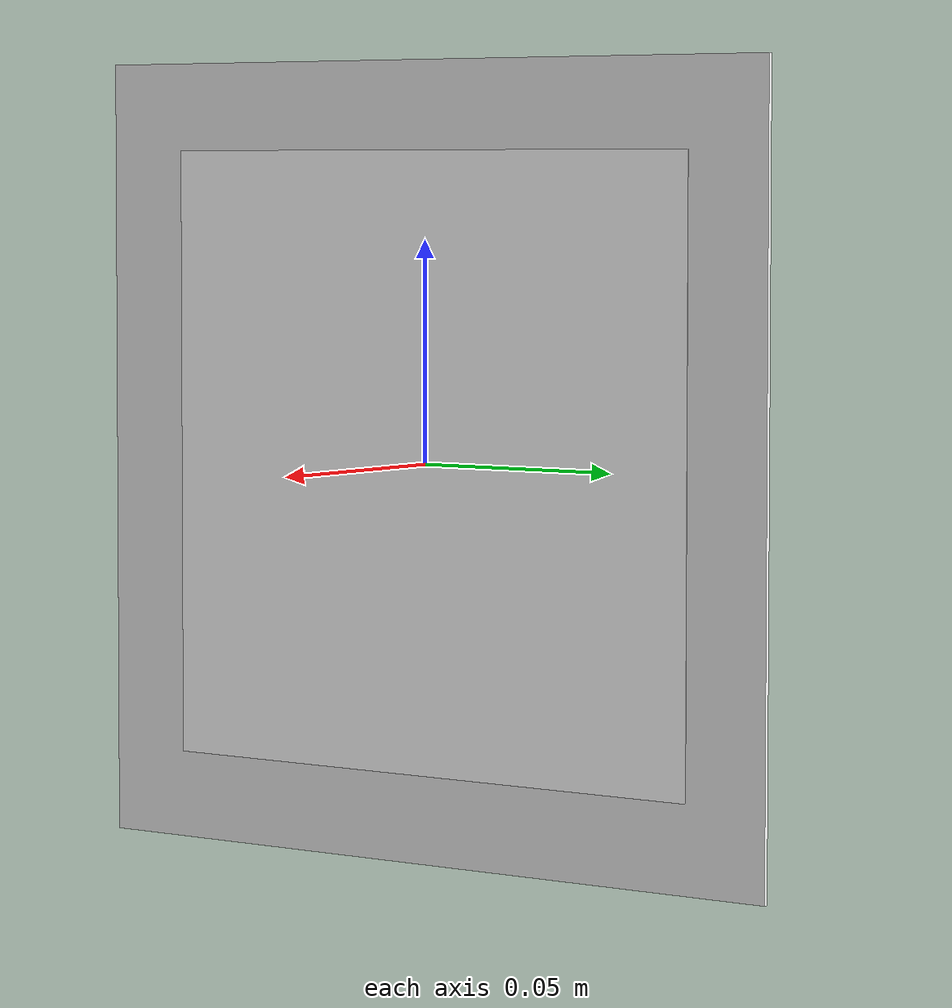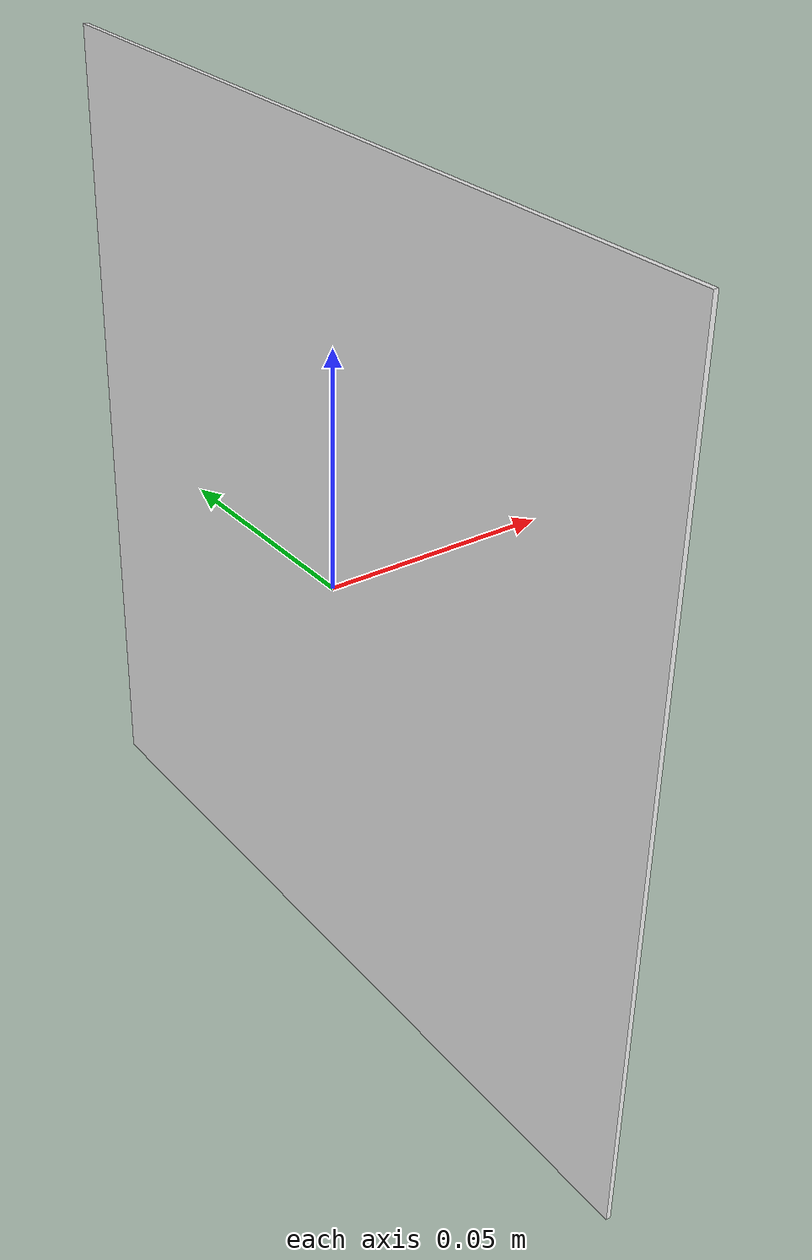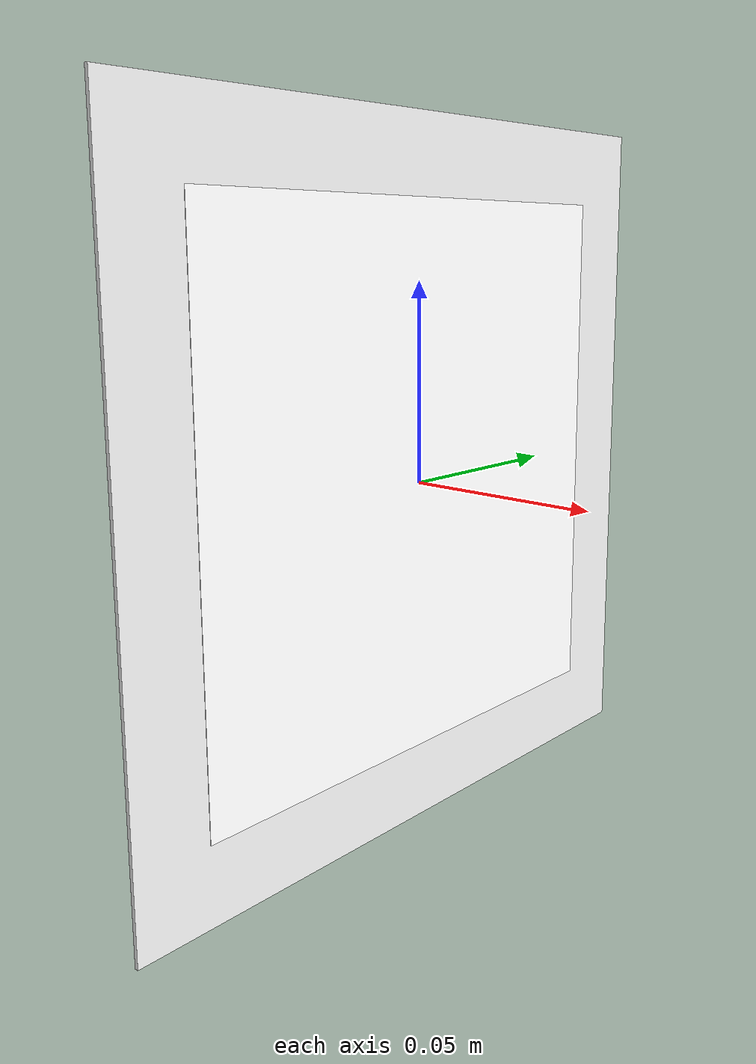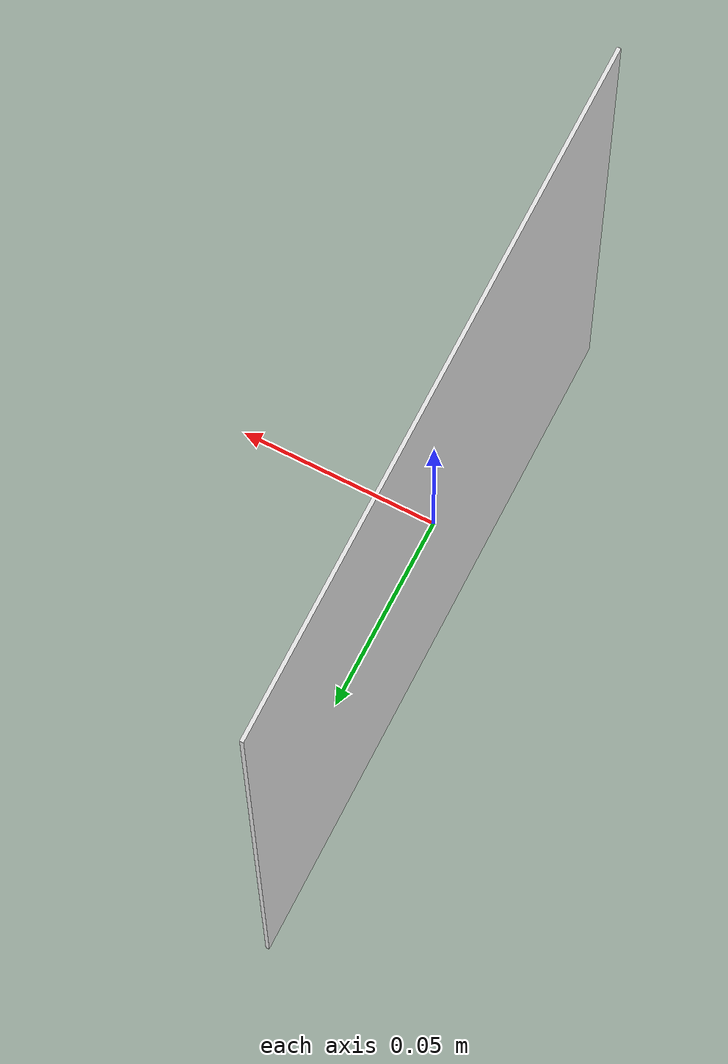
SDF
<?xml  version="1.0" ?>
<sdf version="1.5">

    <model name='aruco_marker_3'>
        <pose>0 0 0 0 0 0</pose>
        <static>true</static>
        <link name='link'>
            <inertial>
                <pose>0 0 0 0 -0 0</pose>
                <mass>0.281</mass>
                <inertia>
                    <ixx>0.0006167</ixx>
                    <ixy>0</ixy>
                    <ixz>0</ixz>
                    <iyy>0.0006167</iyy>
                    <iyz>0</iyz>
                    <izz>0.0006167</izz>
                </inertia>
            </inertial>
            <collision name="collision">
                <geometry>
                    <box>
                        <size>0.001 0.18 0.18</size>
                    </box>
                </geometry>
                <surface>
                    <contact>
                        <ode>
                            <max_vel>1</max_vel>
                            <min_depth>0.001</min_depth>
                            <kp>1000000</kp>
                            <kd>10</kd>
                        </ode>
                    </contact>
                    <friction>
                        <ode>
                            <mu>1</mu>
                            <mu2>1</mu2>
                        </ode>
                    </friction>
                </surface>
            </collision>

            <visual name='box_visual'>
                <cast_shadows>0</cast_shadows>
                    <geometry>
                        <box>
                            <size>0.001 0.18 0.18</size>
                        </box>
                    </geometry>
                    <material>
                    <script>
                        <uri>file://media/materials/scripts/gazebo.material</uri>
                        <name>Gazebo/White</name>
                    </script>
                    <ambient>1 1 1 1</ambient>
                    <diffuse>1 1 1 1</diffuse>
                    <specular>0 0 0 1</specular>
                    <emissive>0 0 0 1</emissive>
                </material>
            </visual>

            <visual name='aruco_visual1'>
                <cast_shadows>0</cast_shadows>
                <pose>0.00065 0.0 0.0 1.5708 0.0 1.5708</pose>
                <geometry>
                    <plane>
                        <normal>0 0 1</normal>
                        <size>0.14 0.14</size>
                    </plane>
                </geometry>
                <material>
                    <script>
                        <uri>file://media/materials/scripts/mcr2_materials.material</uri>
                        <name>mcr2_materials/aruco_marker2</name>
                    </script>
                    <ambient>1 1 1 1</ambient>
                    <diffuse>1 1 1 1</diffuse>
                    <specular>0 0 0 1</specular>
                    <emissive>0 0 0 1</emissive>
                </material>
            </visual>

        </link>
    </model>
</sdf>
